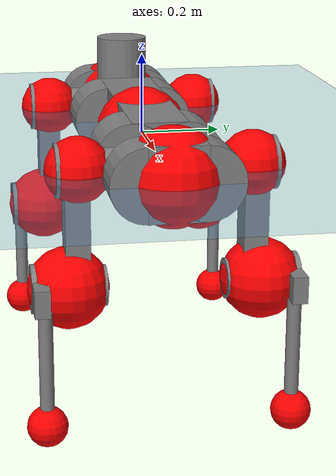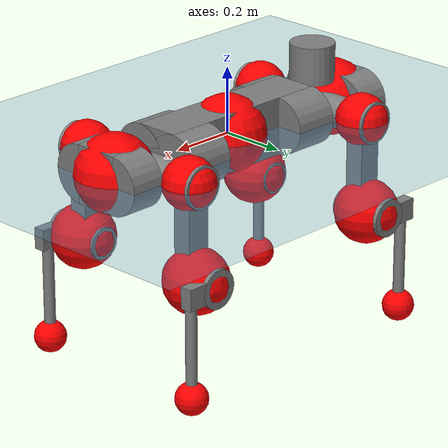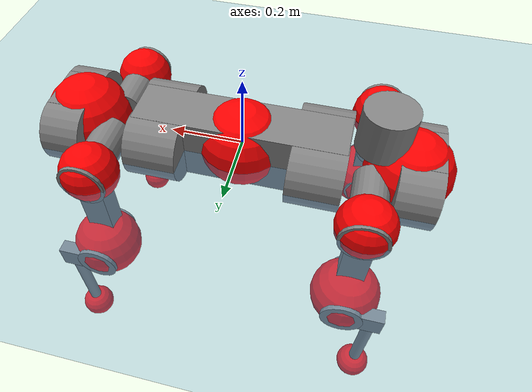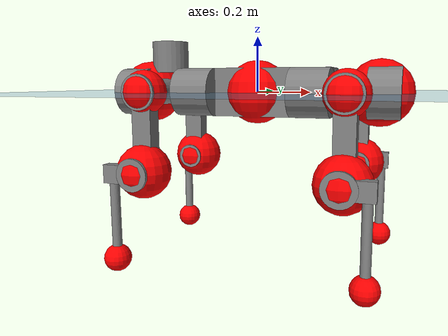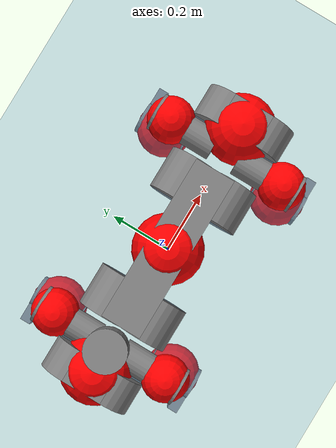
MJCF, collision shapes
<mujoco model="anymal_c">
  <compiler angle="radian" assetdir="assets" balanceinertia="true" inertiafromgeom="false"/>

  <option timestep="0.005" density="1.2" viscosity="2e-05"/>

  <size nkey="1"/>

  <visual>
    <quality shadowsize="8192"/>
    <map shadowclip="0.5"/>
  </visual>

  <default>
    <default class="/">
      <material specular="0" shininess="0.25"/>
      <geom contype="0" conaffinity="0" group="1" solref="-1000 -80"/>
      <site size="0.01 0.005 0.005" group="5"/>
      <general forcelimited="true" forcerange="-80 80" biastype="affine" gainprm="80" biasprm="0 -80 -2"/>
      <default class="anymal_c">
        <joint armature="0.01" damping="0.01" frictionloss="0.1"/>
        <default class="visual">
          <geom type="mesh" group="2"/>
          <default class="visual_zflip"/>
        </default>
        <default class="collision">
          <geom type="cylinder" group="3"/>
          <default class="foot">
            <geom size="0.03 0 0" type="sphere" condim="6" priority="1" friction="0.8 0.02 0.01" solimp="0.015 1 0.03"/>
          </default>
        </default>
      </default>
      <default class="reward_collision_sphere">
        <geom group="5" rgba="1 0 0 1"/>
      </default>
    </default>
  </default>

  <asset>
    <texture type="skybox" colorspace="auto" name="//unnamed_texture_0" builtin="gradient" rgb1="0.95 0.95 0.95" rgb2="0.95 0.95 0.95" width="100" height="600"/>
    <texture type="2d" colorspace="auto" name="texplane" builtin="checker" rgb1="0.345 0.575 0.748" rgb2="0.345 0.575 0.748" markrgb="1 1 1" width="512" height="512"/>
    <texture type="2d" colorspace="linear" name="base" file="base.png"/>
    <texture type="2d" colorspace="linear" name="top_shell" file="top_shell.png"/>
    <texture type="2d" colorspace="linear" name="bottom_shell" file="bottom_shell.png"/>
    <texture type="2d" colorspace="linear" name="remote" file="remote.png"/>
    <texture type="2d" colorspace="linear" name="hatch" file="hatch.png"/>
    <texture type="2d" colorspace="linear" name="handle" file="handle.png"/>
    <texture type="2d" colorspace="linear" name="face" file="face.png"/>
    <texture type="2d" colorspace="linear" name="battery" file="battery.png"/>
    <texture type="2d" colorspace="linear" name="lidar_cage" file="lidar_cage.png"/>
    <texture type="2d" colorspace="linear" name="depth_camera" file="depth_camera.png"/>
    <texture type="2d" colorspace="linear" name="wide_angle_camera" file="wide_angle_camera.png"/>
    <texture type="2d" colorspace="linear" name="lidar" file="lidar.png"/>
    <texture type="2d" colorspace="linear" name="drive" file="drive.png"/>
    <texture type="2d" colorspace="linear" name="hip_l" file="hip_l.png"/>
    <texture type="2d" colorspace="linear" name="shank_l" file="shank_l.png"/>
    <texture type="2d" colorspace="linear" name="foot" file="foot.png"/>
    <texture type="2d" colorspace="linear" name="thigh" file="thigh.png"/>
    <texture type="2d" colorspace="linear" name="shank_r" file="shank_r.png"/>
    <texture type="2d" colorspace="linear" name="hip_r" file="hip_r.png"/>
    <material name="MatPlane" class="/" texture="texplane" texuniform="true" texrepeat="2 2" specular="0.9" shininess="0.5"/>
    <material name="black_plastic" class="/" rgba="0.007 0.007 0.007 1"/>
    <material name="green" class="/" rgba="0.052 0.178 0.033 1"/>
    <material name="red" class="/" rgba="0.178 0.006 0.005 1"/>
    <material name="yellow" class="/" rgba="0.178 0.119 0.006 1"/>
    <material name="lwl" class="/" rgba="0.8 0.8 0.8 1"/>
    <material name="base" class="/" texture="base"/>
    <material name="top_shell" class="/" texture="top_shell"/>
    <material name="bottom_shell" class="/" texture="bottom_shell"/>
    <material name="hip_l" class="/" texture="hip_l"/>
    <material name="thigh" class="/" texture="thigh"/>
    <material name="shank_l" class="/" texture="shank_l"/>
    <material name="foot" class="/" texture="foot"/>
    <material name="hip_r" class="/" texture="hip_r"/>
    <material name="shank" class="/" texture="shank_r"/>
    <material name="hatch" class="/" texture="hatch"/>
    <material name="remote" class="/" texture="remote"/>
    <material name="handle" class="/" texture="handle"/>
    <material name="face" class="/" texture="face"/>
    <material name="depth_camera" class="/" texture="depth_camera"/>
    <material name="wide_angle_camera" class="/" texture="wide_angle_camera"/>
    <material name="battery" class="/" texture="battery"/>
    <material name="lidar_cage" class="/" texture="lidar_cage"/>
    <material name="lidar" class="/" texture="lidar"/>
    <material name="drive" class="/" texture="drive"/>
    <mesh name="base_0" class="/" file="base_0.obj"/>
    <mesh name="base_1" class="/" file="base_1.obj"/>
    <mesh name="base_2" class="/" file="base_2.obj"/>
    <mesh name="base_3" class="/" file="base_3.obj"/>
    <mesh name="base_4" class="/" file="base_4.obj"/>
    <mesh name="base_5" class="/" file="base_5.obj"/>
    <mesh name="top_shell" class="/" file="top_shell.obj"/>
    <mesh name="bottom_shell" class="/" file="bottom_shell.obj"/>
    <mesh name="remote" class="/" file="remote.obj"/>
    <mesh name="handle" class="/" file="handle.obj"/>
    <mesh name="face" class="/" file="face.obj"/>
    <mesh name="wide_angle_camera" class="/" file="wide_angle_camera.obj"/>
    <mesh name="depth_camera" class="/" file="depth_camera.obj"/>
    <mesh name="battery" class="/" file="battery.obj"/>
    <mesh name="lidar_cage" class="/" file="lidar_cage.obj"/>
    <mesh name="lidar" class="/" file="lidar.obj"/>
    <mesh name="drive" class="/" file="drive.obj"/>
    <mesh name="hip_l" class="/" file="hip_l.obj"/>
    <mesh name="thigh" class="/" file="thigh.obj"/>
    <mesh name="shank_l" class="/" file="shank_l.obj"/>
    <mesh name="foot" class="/" file="foot.obj"/>
    <mesh name="hip_r" class="/" file="hip_r.obj"/>
    <mesh name="hatch" class="/" file="hatch.obj"/>
    <mesh name="shank_r" class="/" file="shank_r.obj"/>
  </asset>

  <worldbody>
    <geom name="floor" class="/" size="100 100 0.125" type="plane" group="0" material="MatPlane"/>
    <light name="toplight_shadow" class="/" pos="0 0 5" dir="0.0990148 0.0990148 -0.990148" type="directional" ambient="0.04 0.04 0.04" diffuse="0.55 0.55 0.55" specular="0.12 0.12 0.12"/>
    <light name="toplight_fill" class="/" pos="0 0 5" dir="0.0990148 0.0990148 -0.990148" type="directional" castshadow="false" ambient="0.04 0.04 0.04" diffuse="0.3 0.3 0.3" specular="0.08 0.08 0.08"/>
    <body name="trunk" childclass="anymal_c" pos="0.000448363 5.77178e-05 4.27506e-05" quat="1 9.76031e-05 -0.00014189 -0.000204433">
      <inertial pos="0.00171154 -0.00138306 0.0477741" quat="0.499219 0.49811 0.502505 0.500156" mass="17.162" diaginertia="0.586665 0.478882 0.202326"/>
      <joint name="//unnamed_joint_0" type="free" armature="0" damping="0" frictionloss="0"/>
      <geom name="//unnamed_geom_1" class="visual" material="green" mesh="base_0"/>
      <geom name="//unnamed_geom_2" class="visual" material="yellow" mesh="base_1"/>
      <geom name="//unnamed_geom_3" class="visual" material="red" mesh="base_2"/>
      <geom name="//unnamed_geom_4" class="visual" material="black_plastic" mesh="base_3"/>
      <geom name="//unnamed_geom_5" class="visual" material="lwl" mesh="base_4"/>
      <geom name="//unnamed_geom_6" class="visual" material="base" mesh="base_5"/>
      <geom name="trunk_1" class="collision" size="0.282539 0.0681991 0.0876846" type="box"/>
      <geom name="trunk_2" class="collision" size="0.0876846 0.0706348" pos="0.214438 0.0664727 0" quat="0.707107 0 0.707107 0"/>
      <geom name="trunk_3" class="collision" size="0.0876846 0.0706348" pos="-0.214438 0.0664727 0" quat="0.707107 0 0.707107 0"/>
      <geom name="trunk_4" class="collision" size="0.0876846 0.0706348" pos="0.214438 -0.0664727 0" quat="0.707107 0 0.707107 0"/>
      <geom name="trunk_5" class="collision" size="0.0876846 0.0706348" pos="-0.214438 -0.0664727 0" quat="0.707107 0 0.707107 0"/>
      <geom name="//unnamed_geom_12" class="visual" material="top_shell" mesh="top_shell"/>
      <geom name="//unnamed_geom_13" class="visual" material="bottom_shell" mesh="bottom_shell"/>
      <geom name="//unnamed_geom_14" class="visual" material="remote" mesh="remote"/>
      <geom name="//unnamed_geom_15" class="visual" material="handle" mesh="handle"/>
      <geom name="//unnamed_geom_16" class="visual" pos="0.408664 0 0" quat="1 0 0 0" material="face" mesh="face"/>
      <geom name="trunk_6" class="collision" size="0.053585 0.0681991 0.0876846" pos="0.46289 0 0" type="box"/>
      <geom name="//unnamed_geom_18" class="collision" size="0.0876846 0.053585" pos="0.46289 0.0664727 0" quat="0.707107 0 0.707107 0"/>
      <geom name="//unnamed_geom_19" class="collision" size="0.0876846 0.053585" pos="0.46289 -0.0664727 0" quat="0.707107 0 0.707107 0"/>
      <geom name="//unnamed_geom_20" class="visual" pos="0.455151 0 -0.0288392" quat="0.965926 0 0.258819 0" material="depth_camera" mesh="depth_camera"/>
      <geom name="//unnamed_geom_21" class="visual" pos="0.505778 0 0.0147797" material="wide_angle_camera" mesh="wide_angle_camera"/>
      <geom name="//unnamed_geom_22" class="visual_zflip" pos="-0.408664 0 0" quat="0 0 0 1" material="face" mesh="face"/>
      <geom name="trunk_7" class="collision" size="0.053585 0.0681991 0.0876846" pos="-0.46289 0 0" quat="0 0 0 1" type="box"/>
      <geom name="//unnamed_geom_24" class="collision" size="0.0876846 0.053585" pos="-0.46289 -0.0664727 0" quat="0 -0.707107 0 0.707107"/>
      <geom name="//unnamed_geom_25" class="collision" size="0.0876846 0.053585" pos="-0.46289 0.0664727 0" quat="0 -0.707107 0 0.707107"/>
      <geom name="//unnamed_geom_26" class="visual" pos="-0.455151 0 -0.0288392" quat="0 -0.258819 0 0.965926" material="depth_camera" mesh="depth_camera"/>
      <geom name="//unnamed_geom_27" class="visual_zflip" pos="-0.505778 0 0.0147797" quat="0 0 0 1" material="wide_angle_camera" mesh="wide_angle_camera"/>
      <geom name="//unnamed_geom_28" class="visual" material="battery" mesh="battery"/>
      <geom name="//unnamed_geom_29" class="visual" pos="0 0.0721307 0.0286704" quat="0.683013 -0.183013 0.183013 0.683013" material="depth_camera" mesh="depth_camera"/>
      <geom name="//unnamed_geom_30" class="visual" pos="0 -0.0721307 0.0286704" quat="0.683013 0.183013 0.183013 -0.683013" material="depth_camera" mesh="depth_camera"/>
      <geom name="//unnamed_geom_31" class="visual" pos="-0.358875 0 0.0725658" quat="1 0 0 0" material="lidar_cage" mesh="lidar_cage"/>
      <geom name="trunk_8" class="collision" size="0.0681991 0.0584564" pos="-0.358875 0 0.131803"/>
      <geom name="//unnamed_geom_33" class="visual" pos="-0.358875 -1.42658e-05 0.140393" quat="0.707107 0 0 -0.707107" material="lidar" mesh="lidar"/>
      <geom name="//unnamed_geom_34" class="visual" pos="0.295678 0.0987728 -6.49978e-10" quat="0.258819 0.965926 0 0" material="drive" mesh="drive"/>
      <geom name="//unnamed_geom_35" class="visual" pos="0.295678 -0.0987728 6.49978e-10" quat="0.258819 -0.965926 0 0" material="drive" mesh="drive"/>
      <geom name="//unnamed_geom_36" class="visual" pos="-0.295678 0.0987728 6.49978e-10" quat="0 0 0.965926 -0.258819" material="drive" mesh="drive"/>
      <geom name="//unnamed_geom_37" class="visual" pos="-0.295678 -0.0987728 -6.49978e-10" quat="0 0 -0.965926 -0.258819" material="drive" mesh="drive"/>
      <geom name="//unnamed_geom_38" class="visual" pos="0.114367 0 0.0720721" quat="1 0 0 0" material="hatch" mesh="hatch"/>
      <geom name="//unnamed_geom_39" class="reward_collision_sphere" size="0.116913"/>
      <geom name="//unnamed_geom_40" class="reward_collision_sphere" size="0.116913" pos="0.443665 0 0"/>
      <geom name="//unnamed_geom_41" class="reward_collision_sphere" size="0.116913" pos="-0.443665 0 0"/>
      <site name="imu" pos="0.235547 0.00546274 0.051601" size="0.00974274"/>
      <camera name="track" pos="0 -1.89922 0" quat="0.707107 0.707107 0 0" mode="trackcom"/>
      <camera name="ego_camera" pos="0.443665 0 -0.0394916" quat="-0.5 -0.5 0.5 0.5"/>
      <body name="LF_HIP" pos="0.296431 0.0989908 0.000683498" quat="0.258312 0.966062 -0.000118952 -0.000213462">
        <inertial pos="0.0572084 -0.0133454 -0.00843187" quat="-0.12811 0.711578 -0.133758 0.677756" mass="2.52948" diaginertia="0.00535766 0.00381164 0.00306008"/>
        <joint name="LF_HAA" pos="0 0 0" axis="0.99999 0.00173368 -0.00419912" stiffness="0.000909317" range="-0.724865 0.473495" armature="0.0105903" damping="0.000928441" frictionloss="0.0964261"/>
        <geom name="//unnamed_geom_42" class="visual" pos="0 -3.82352e-05 6.28011e-06" quat="0.258819 -0.965926 0 0" material="hip_l" mesh="hip_l"/>
        <geom name="//unnamed_geom_43" class="visual" pos="0.0590567 -0.071095 -0.0413254" quat="0.183013 -0.683013 0.683013 0.183013" material="drive" mesh="drive"/>
        <geom name="//unnamed_geom_44" class="collision" size="0.0487137 0.0681991" pos="0.0590567 -0.0113571 -0.00681723" quat="-0.353553 -0.612372 0.612372 -0.353553"/>
        <body name="LF_THIGH" pos="0.0592591 -0.0683783 -0.0412381" quat="0.183541 -0.682938 0.682977 0.182895">
          <inertial pos="0.0295657 0.000282734 -0.24115" quat="0.99296 -0.00377463 -0.080912 0.0864288" mass="2.82622" diaginertia="0.0277249 0.0231022 0.00391857"/>
          <joint name="LF_HFE" pos="0 0 0" axis="0.999962 0.00678544 0.00552239" range="-3.13223 3.14162" armature="0.00990157" damping="0.0134366" frictionloss="0.0917485"/>
          <geom name="//unnamed_geom_45" class="visual" pos="0.000722457 1.13842e-06 0" quat="0.707107 0 0 -0.707107" material="thigh" mesh="thigh"/>
          <geom name="//unnamed_geom_46" class="collision" size="0.0633278 0.0389709" pos="0.0394369 0 0" quat="0.5 0.5 -0.5 -0.5"/>
          <geom name="//unnamed_geom_47" class="collision" size="0.0365353 0.0292282 0.137678" pos="0.0295776 0 -0.139518" quat="0.707107 0 0 -0.707107" type="box"/>
          <geom name="//unnamed_geom_48" class="visual" pos="0.0988879 0 -0.281377" quat="1 0 0 0" material="drive" mesh="drive"/>
          <geom name="//unnamed_geom_49" class="collision" size="0.0487137 0.0681991" pos="0.0298734 0 -0.281377" quat="0.707107 0 0.707107 0"/>
          <geom name="//unnamed_geom_50" class="reward_collision_sphere" size="0.0779419" pos="0.024648 0 0"/>
          <body name="LF_SHANK" pos="0.099391 -0.00111581 -0.283273" quat="1 0.000373667 -1.73725e-05 0.00013076">
            <inertial pos="0.00543859 -0.0580558 -0.0794575" quat="0.992789 -0.117005 -0.00262324 -0.0259585" mass="0.550316" diaginertia="0.0095472 0.00711728 0.00106092"/>
            <joint name="LF_KFE" pos="0 0 0" axis="1 -3.95003e-06 -0.000297628" range="-3.13728 3.12093" armature="0.00930739" damping="0.00191023" frictionloss="0.0955123"/>
            <geom name="//unnamed_geom_51" class="visual" pos="0.000235577 0.00125611 0" quat="0.707107 0 0 -0.707107" material="shank_l" mesh="shank_l"/>
            <geom name="LF_kfe_act" class="collision" size="0.0584564 0.0194855" pos="0.0197184 0 0" quat="0.5 0.5 -0.5 -0.5"/>
            <geom name="//unnamed_geom_53" class="collision" size="0.0560198 0.0328817 0.0185112" pos="0.0197184 -0.0546016 0" quat="0.5 0.5 -0.5 -0.5" type="box"/>
            <geom name="//unnamed_geom_54" class="visual" pos="0.0128662 -0.0831134 -0.333674" quat="0.382683 0 0 -0.92388" material="foot" mesh="foot"/>
            <geom name="LF_calf" class="collision" size="0.0170498 0.137618" pos="0.0128663 -0.0835182 -0.166837" quat="0.707107 0 0 -0.707107"/>
            <geom name="LF_foot" class="foot" size="0.0324234" pos="0.0128663 -0.0835182 -0.31146" quat="0.707107 0 0 -0.707107"/>
            <geom name="//unnamed_geom_57" class="reward_collision_sphere" size="0.0974274" pos="-0.0492961 0 0"/>
            <geom name="//unnamed_geom_58" class="reward_collision_sphere" size="0.0487137" pos="0.0128663 -0.0835182 -0.31146"/>
            <site name="LF_foot" class="foot" pos="0.0128663 -0.0835182 -0.31146" quat="0.707107 0 0 -0.707107" size="0.00974274"/>
          </body>
        </body>
      </body>
      <body name="RF_HIP" pos="0.296691 -0.0986147 0.00151438" quat="0.25882 -0.965926 1.58425e-05 8.04434e-06">
        <inertial pos="0.0571184 0.014301 -0.00783641" quat="0.135543 0.678294 0.12768 0.710805" mass="2.56829" diaginertia="0.00549437 0.00374557 0.00306553"/>
        <joint name="RF_HAA" pos="0 0 0" axis="0.999995 -0.00153102 -0.00259139" range="-0.521235 0.729342" armature="0.00921728" damping="0.0102751" frictionloss="0.0913741"/>
        <geom name="//unnamed_geom_59" class="visual" pos="0 3.82349e-05 6.28009e-06" quat="0.258819 0.965926 0 0" material="hip_r" mesh="hip_r"/>
        <geom name="//unnamed_geom_60" class="visual" pos="0.0590567 0.071095 -0.0413254" quat="0.183013 0.683013 0.683013 -0.183013" material="drive" mesh="drive"/>
        <geom name="//unnamed_geom_61" class="collision" size="0.0487137 0.0681991" pos="0.0590567 0.0113571 -0.00681723" quat="-0.353553 0.612372 0.612372 0.353553"/>
        <body name="RF_THIGH" pos="0.0603504 0.0704807 -0.0410572" quat="0.183018 0.683089 0.682899 -0.183143">
          <inertial pos="0.030608 0.000339421 -0.242887" quat="0.992603 -0.00620463 -0.0778819 0.0929246" mass="2.76763" diaginertia="0.0282004 0.0228532 0.00385743"/>
          <joint name="RF_HFE" pos="0 0 0" axis="0.999998 0.000662361 0.00187792" stiffness="0.00506626" range="-3.10411 3.13542" armature="0.00976622" damping="0.00481215" frictionloss="0.108086"/>
          <geom name="//unnamed_geom_62" class="visual" pos="0.000722457 1.13842e-06 0" quat="0.707107 0 0 -0.707107" material="thigh" mesh="thigh"/>
          <geom name="//unnamed_geom_63" class="collision" size="0.0633278 0.0389709" pos="0.0394369 0 0" quat="0.5 0.5 0.5 0.5"/>
          <geom name="//unnamed_geom_64" class="collision" size="0.0365353 0.0292282 0.137678" pos="0.0295776 0 -0.139518" quat="0.707107 0 0 0.707107" type="box"/>
          <geom name="//unnamed_geom_65" class="visual" pos="0.0988879 0 -0.281377" quat="1 0 0 0" material="drive" mesh="drive"/>
          <geom name="//unnamed_geom_66" class="collision" size="0.0487137 0.0681991" pos="0.0298734 0 -0.281377" quat="0.707107 0 0.707107 0"/>
          <geom name="//unnamed_geom_67" class="reward_collision_sphere" size="0.0779419" pos="0.024648 0 0"/>
          <body name="RF_SHANK" pos="0.0996708 -0.00129649 -0.282322" quat="1 2.11396e-05 -2.84732e-05 9.85507e-05">
            <inertial pos="0.00553218 0.0581594 -0.0778531" quat="0.993085 0.114415 -0.00380159 0.0260129" mass="0.54234" diaginertia="0.00926592 0.00709203 0.00105291"/>
            <joint name="RF_KFE" pos="0 0 0" axis="1 -4.39936e-05 -0.000702051" range="-3.11984 3.12774" armature="0.01013" damping="0.0116499" frictionloss="0.0888236"/>
            <geom name="//unnamed_geom_68" class="visual" pos="0.000235576 -0.00125611 0" quat="0.707107 0 0 0.707107" material="shank" mesh="shank_r"/>
            <geom name="RF_kfe_act" class="collision" size="0.0584564 0.0194855" pos="0.0197184 0 0" quat="0.5 0.5 0.5 0.5"/>
            <geom name="//unnamed_geom_70" class="collision" size="0.0560198 0.0328817 0.0185112" pos="0.0197184 0.0546016 0" quat="0.5 0.5 0.5 0.5" type="box"/>
            <geom name="//unnamed_geom_71" class="visual" pos="0.0128663 0.0831134 -0.333674" quat="0.382683 0 0 0.92388" material="foot" mesh="foot"/>
            <geom name="RF_calf" class="collision" size="0.0170498 0.137618" pos="0.0128663 0.0835182 -0.166837" quat="0.707107 0 0 0.707107"/>
            <geom name="RF_foot" class="foot" size="0.0274084" pos="0.0128663 0.0835182 -0.31146" quat="0.707107 0 0 0.707107"/>
            <geom name="//unnamed_geom_74" class="reward_collision_sphere" size="0.0974274" pos="-0.0492961 0 0"/>
            <geom name="//unnamed_geom_75" class="reward_collision_sphere" size="0.0487137" pos="0.0128663 0.0835182 -0.31146"/>
            <site name="RF_foot" class="foot" pos="0.0128663 0.0835182 -0.31146" quat="0.707107 0 0 0.707107" size="0.00974274"/>
          </body>
        </body>
      </body>
      <body name="LH_HIP" pos="-0.29681 0.0986784 -0.000592222" quat="5.48395e-05 8.88001e-06 0.965901 -0.25891">
        <inertial pos="0.055023 0.015658 -0.00819122" quat="0.134329 0.678217 0.130068 0.710675" mass="2.54926" diaginertia="0.00545137 0.00383836 0.00300442"/>
        <joint name="LH_HAA" pos="0 0 0" axis="0.999994 -0.00189898 0.00284161" stiffness="0.00182103" range="-0.511883 0.679733" armature="0.00903912" damping="0.0136868" frictionloss="0.0980925"/>
        <geom name="//unnamed_geom_76" class="visual" pos="0 3.82349e-05 6.28009e-06" quat="-0.258819 -0.965926 0 0" material="hip_r" mesh="hip_r"/>
        <geom name="//unnamed_geom_77" class="visual" pos="0.0590567 0.071095 -0.0413254" quat="0.183013 0.683013 0.683013 -0.183013" material="drive" mesh="drive"/>
        <geom name="//unnamed_geom_78" class="collision" size="0.0487137 0.0681991" pos="0.0590567 0.0113571 -0.00681723" quat="-0.353553 0.612372 0.612372 0.353553"/>
        <body name="LH_THIGH" pos="0.0584622 0.067287 -0.0407415" quat="0.182944 0.68307 0.682943 -0.183126">
          <inertial pos="0.0303925 0.000540525 -0.242799" quat="0.992608 -0.0047536 -0.0806671 0.0905496" mass="2.83425" diaginertia="0.0281487 0.0231991 0.00388599"/>
          <joint name="LH_HFE" pos="0 0 0" axis="0.999981 -0.00617282 1.56084e-05" range="-3.13942 3.12903" armature="0.010172" damping="0.0135231" frictionloss="0.0930581"/>
          <geom name="//unnamed_geom_79" class="visual" pos="0.000722457 1.13842e-06 0" quat="0.707107 0 0 -0.707107" material="thigh" mesh="thigh"/>
          <geom name="//unnamed_geom_80" class="collision" size="0.0633278 0.0389709" pos="0.0394369 0 0" quat="0.5 0.5 -0.5 -0.5"/>
          <geom name="//unnamed_geom_81" class="collision" size="0.0365353 0.0292282 0.137678" pos="0.0295776 0 -0.139518" quat="0.707107 0 0 -0.707107" type="box"/>
          <geom name="//unnamed_geom_82" class="visual" pos="0.0988879 0 -0.281377" quat="1 0 0 0" material="drive" mesh="drive"/>
          <geom name="//unnamed_geom_83" class="collision" size="0.0487137 0.0681991" pos="0.0298734 0 -0.281377" quat="0.707107 0 0.707107 0"/>
          <geom name="//unnamed_geom_84" class="reward_collision_sphere" size="0.0779419" pos="0.024648 0 0"/>
          <body name="LH_SHANK" pos="0.0997136 -0.000190288 -0.281185" quat="1 -0.00012823 0.000102811 0.000335598">
            <inertial pos="0.00538322 0.0579602 -0.0794439" quat="0.992112 0.120323 -0.00325523 0.0349945" mass="0.54503" diaginertia="0.00951281 0.00719664 0.00102614"/>
            <joint name="LH_KFE" pos="0 0 0" axis="0.999986 -0.00113578 -0.00509553" range="-3.14304 3.13807" armature="0.00956148" damping="0.0107469" frictionloss="0.0960849"/>
            <geom name="//unnamed_geom_85" class="visual" pos="0.000235576 -0.00125611 0" quat="-0.707107 0 0 -0.707107" material="shank" mesh="shank_r"/>
            <geom name="LH_kfe_act" class="collision" size="0.0584564 0.0194855" pos="0.0197184 0 0" quat="0.5 0.5 -0.5 -0.5"/>
            <geom name="//unnamed_geom_87" class="collision" size="0.0560198 0.0328817 0.0185112" pos="0.0197184 0.0546016 0" quat="0.5 0.5 -0.5 -0.5" type="box"/>
            <geom name="//unnamed_geom_88" class="visual" pos="0.0128663 0.0831134 -0.333674" quat="-0.382683 0 0 -0.92388" material="foot" mesh="foot"/>
            <geom name="LH_calf" class="collision" size="0.0170498 0.137618" pos="0.0128663 0.0835182 -0.166837" quat="0.707107 0 0 -0.707107"/>
            <geom name="LH_foot" class="foot" size="0.0334063" pos="0.0128663 0.0835182 -0.31146" quat="0.707107 0 0 -0.707107"/>
            <geom name="//unnamed_geom_91" class="reward_collision_sphere" size="0.0974274" pos="-0.0492961 0 0"/>
            <geom name="//unnamed_geom_92" class="reward_collision_sphere" size="0.0487137" pos="0.0128663 0.0835182 -0.31146"/>
            <site name="LH_foot" class="foot" pos="0.0128663 0.0835182 -0.31146" quat="0.707107 0 0 -0.707107" size="0.00974274"/>
          </body>
        </body>
      </body>
      <body name="RH_HIP" pos="-0.295811 -0.100696 0.000976793" quat="0.000235481 -5.19328e-05 -0.965847 -0.259114">
        <inertial pos="0.0543681 -0.0143861 -0.00740077" quat="-0.129556 0.710239 -0.133357 0.678963" mass="2.59789" diaginertia="0.00552611 0.00384082 0.0030516"/>
        <joint name="RH_HAA" pos="0 0 0" axis="1 -0.000816606 0.000380833" stiffness="0.000545257" range="-0.742274 0.531035" armature="0.00952438" damping="0.0101099" frictionloss="0.0985179"/>
        <geom name="//unnamed_geom_93" class="visual" pos="0 -3.82352e-05 6.28011e-06" quat="-0.258819 0.965926 0 0" material="hip_l" mesh="hip_l"/>
        <geom name="//unnamed_geom_94" class="visual" pos="0.0590567 -0.071095 -0.0413254" quat="-0.183013 0.683013 -0.683013 -0.183013" material="drive" mesh="drive"/>
        <geom name="//unnamed_geom_95" class="collision" size="0.0487137 0.0681991" pos="0.0590567 -0.0113571 -0.00681723" quat="0.353553 0.612372 -0.612372 0.353553"/>
        <body name="RH_THIGH" pos="0.0593324 -0.0683236 -0.0404285" quat="-0.183065 0.68297 -0.683051 -0.182979">
          <inertial pos="0.0306978 0.000232432 -0.242037" quat="0.993177 -0.0053043 -0.0807657 0.0839486" mass="2.70217" diaginertia="0.0271093 0.0224166 0.00381895"/>
          <joint name="RH_HFE" pos="0 0 0" axis="0.999996 -0.00280306 -0.00105224" range="-3.13697 3.14841" armature="0.0102284" damping="0.0123612" frictionloss="0.0984515"/>
          <geom name="//unnamed_geom_96" class="visual" pos="0.000722457 1.13842e-06 0" quat="0.707107 0 0 -0.707107" material="thigh" mesh="thigh"/>
          <geom name="//unnamed_geom_97" class="collision" size="0.0633278 0.0389709" pos="0.0394369 0 0" quat="0.5 0.5 0.5 0.5"/>
          <geom name="//unnamed_geom_98" class="collision" size="0.0365353 0.0292282 0.137678" pos="0.0295776 0 -0.139518" quat="0.707107 0 0 0.707107" type="box"/>
          <geom name="//unnamed_geom_99" class="visual" pos="0.0988879 0 -0.281377" quat="1 0 0 0" material="drive" mesh="drive"/>
          <geom name="//unnamed_geom_100" class="collision" size="0.0487137 0.0681991" pos="0.0298734 0 -0.281377" quat="0.707107 0 0.707107 0"/>
          <geom name="//unnamed_geom_101" class="reward_collision_sphere" size="0.0779419" pos="0.024648 0 0"/>
          <body name="RH_SHANK" pos="0.097414 0.000348694 -0.282118" quat="1 -0.00033482 -6.47287e-05 -0.000357722">
            <inertial pos="0.00643625 -0.0581068 -0.0795563" quat="0.993447 -0.111548 -0.00140248 -0.024846" mass="0.550203" diaginertia="0.00959387 0.00723486 0.00105233"/>
            <joint name="RH_KFE" pos="0 0 0" axis="0.999996 -0.00190489 -0.0022595" range="-3.13878 3.1513" armature="0.00888202" damping="0.00394916" frictionloss="0.0976526"/>
            <geom name="//unnamed_geom_102" class="visual" pos="0.000235577 0.00125611 0" quat="0.707107 0 0 -0.707107" material="shank_l" mesh="shank_l"/>
            <geom name="RH_kfe_act" class="collision" size="0.0584564 0.0194855" pos="0.0197184 0 0" quat="0.5 0.5 0.5 0.5"/>
            <geom name="//unnamed_geom_104" class="collision" size="0.0560198 0.0328817 0.0185112" pos="0.0197184 -0.0546016 0" quat="0.5 0.5 0.5 0.5" type="box"/>
            <geom name="//unnamed_geom_105" class="visual" pos="0.0128662 -0.0831134 -0.333674" quat="0.382683 0 0 -0.92388" material="foot" mesh="foot"/>
            <geom name="RH_calf" class="collision" size="0.0170498 0.137618" pos="0.0128663 -0.0835182 -0.166837" quat="0.707107 0 0 0.707107"/>
            <geom name="RH_foot" class="foot" size="0.0260255" pos="0.0128663 -0.0835182 -0.31146" quat="0.707107 0 0 0.707107"/>
            <geom name="//unnamed_geom_108" class="reward_collision_sphere" size="0.0974274" pos="-0.0492961 0 0"/>
            <geom name="//unnamed_geom_109" class="reward_collision_sphere" size="0.0487137" pos="0.0128663 -0.0835182 -0.31146"/>
            <site name="RH_foot" class="foot" pos="0.0128663 -0.0835182 -0.31146" quat="0.707107 0 0 0.707107" size="0.00974274"/>
          </body>
        </body>
      </body>
    </body>
  </worldbody>

  <contact>
    <pair class="/" geom1="floor" geom2="LF_foot" name="//unnamed_contact_0"/>
    <pair class="/" geom1="floor" geom2="RF_foot" name="//unnamed_contact_1"/>
    <pair class="/" geom1="floor" geom2="LH_foot" name="//unnamed_contact_2"/>
    <pair class="/" geom1="floor" geom2="RH_foot" name="//unnamed_contact_3"/>
  </contact>

  <actuator>
    <general name="LF_HAA" class="/" joint="LF_HAA" forcerange="-77.2517 77.2517" gainprm="83.6153" biasprm="0 -83.6153 -1.93122"/>
    <general name="LF_HFE" class="/" joint="LF_HFE" forcerange="-80.3852 80.3852" gainprm="83.6153" biasprm="0 -83.6153 -1.93122"/>
    <general name="LF_KFE" class="/" joint="LF_KFE" forcerange="-77.7055 77.7055" gainprm="83.6153" biasprm="0 -83.6153 -1.93122"/>
    <general name="RF_HAA" class="/" joint="RF_HAA" forcerange="-79.9432 79.9432" gainprm="83.6153" biasprm="0 -83.6153 -1.93122"/>
    <general name="RF_HFE" class="/" joint="RF_HFE" forcerange="-76.4138 76.4138" gainprm="83.6153" biasprm="0 -83.6153 -1.93122"/>
    <general name="RF_KFE" class="/" joint="RF_KFE" forcerange="-75.4672 75.4672" gainprm="83.6153" biasprm="0 -83.6153 -1.93122"/>
    <general name="LH_HAA" class="/" joint="LH_HAA" forcerange="-78.3303 78.3303" gainprm="83.6153" biasprm="0 -83.6153 -1.93122"/>
    <general name="LH_HFE" class="/" joint="LH_HFE" forcerange="-75.7011 75.7011" gainprm="83.6153" biasprm="0 -83.6153 -1.93122"/>
    <general name="LH_KFE" class="/" joint="LH_KFE" forcerange="-77.6471 77.6471" gainprm="83.6153" biasprm="0 -83.6153 -1.93122"/>
    <general name="RH_HAA" class="/" joint="RH_HAA" forcerange="-80.1347 80.1347" gainprm="83.6153" biasprm="0 -83.6153 -1.93122"/>
    <general name="RH_HFE" class="/" joint="RH_HFE" forcerange="-73.4415 73.4415" gainprm="83.6153" biasprm="0 -83.6153 -1.93122"/>
    <general name="RH_KFE" class="/" joint="RH_KFE" forcerange="-80.4611 80.4611" gainprm="83.6153" biasprm="0 -83.6153 -1.93122"/>
  </actuator>

  <sensor>
    <gyro site="imu" name="imu_angular_velocity"/>
    <velocimeter site="imu" name="imu_linear_velocity"/>
    <framelinvel objtype="site" objname="LF_foot" name="LF_foot_global_linear_velocity"/>
    <framelinvel objtype="site" objname="RF_foot" name="RF_foot_global_linear_velocity"/>
    <framelinvel objtype="site" objname="LH_foot" name="LH_foot_global_linear_velocity"/>
    <framelinvel objtype="site" objname="RH_foot" name="RH_foot_global_linear_velocity"/>
  </sensor>

  <keyframe>
    <key name="home" qpos="0 0 0.55 1 0 0 0 0 0.4 -0.8 0 -0.4 0.8 0 -0.4 0.8 0 0.4 -0.8"/>
  </keyframe>
</mujoco>
